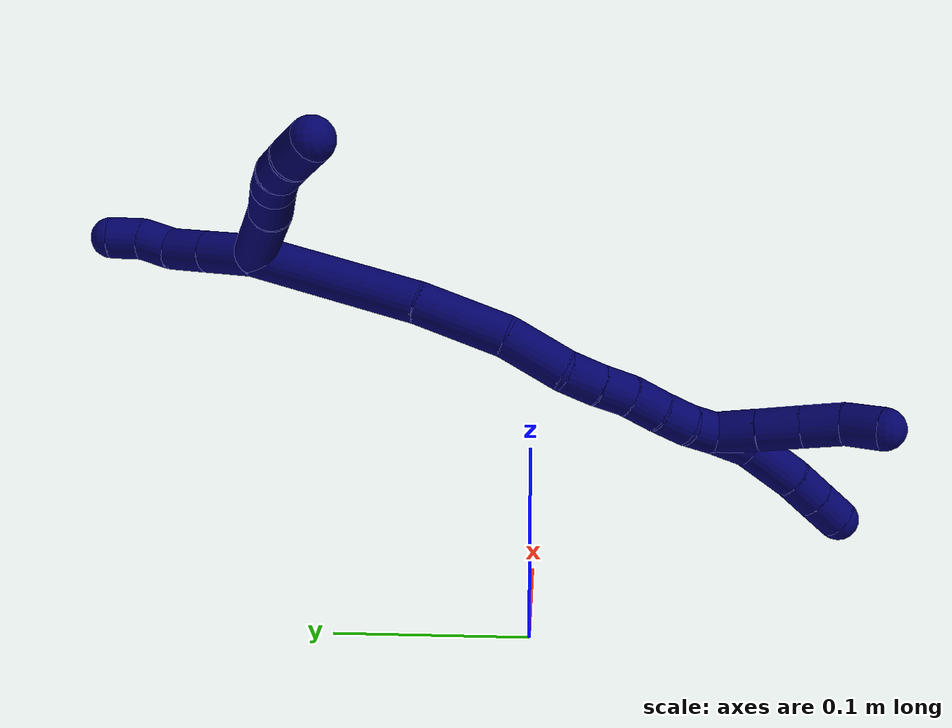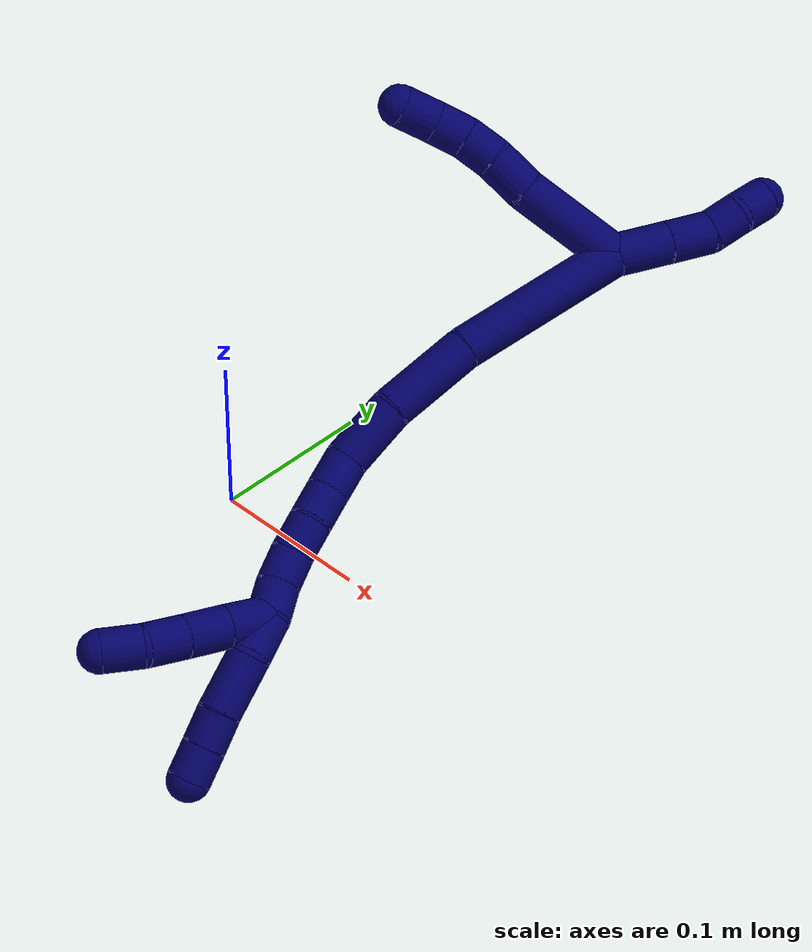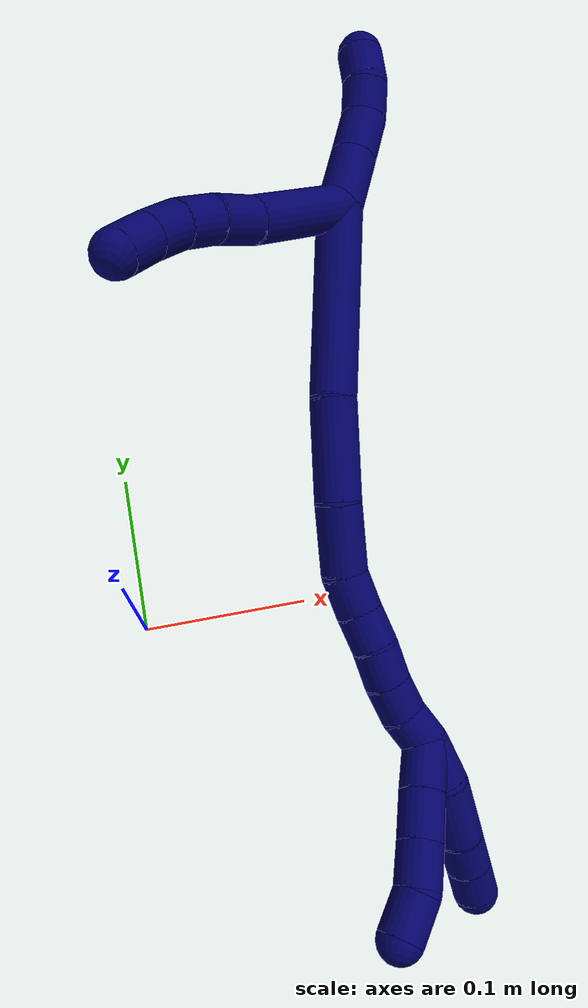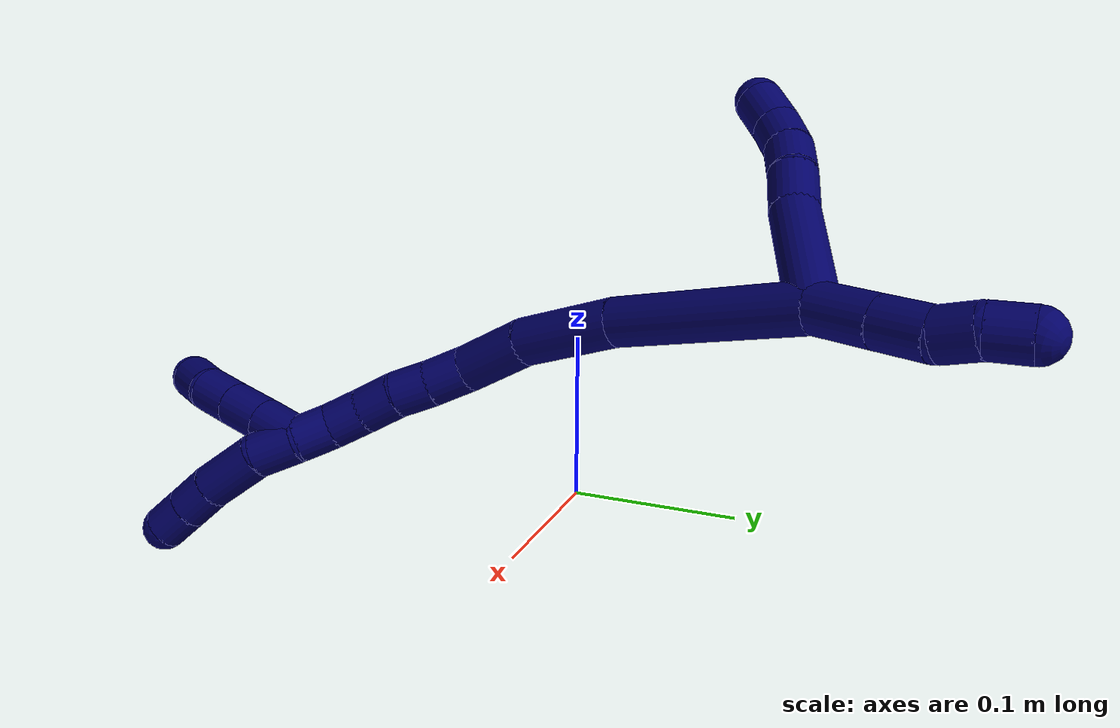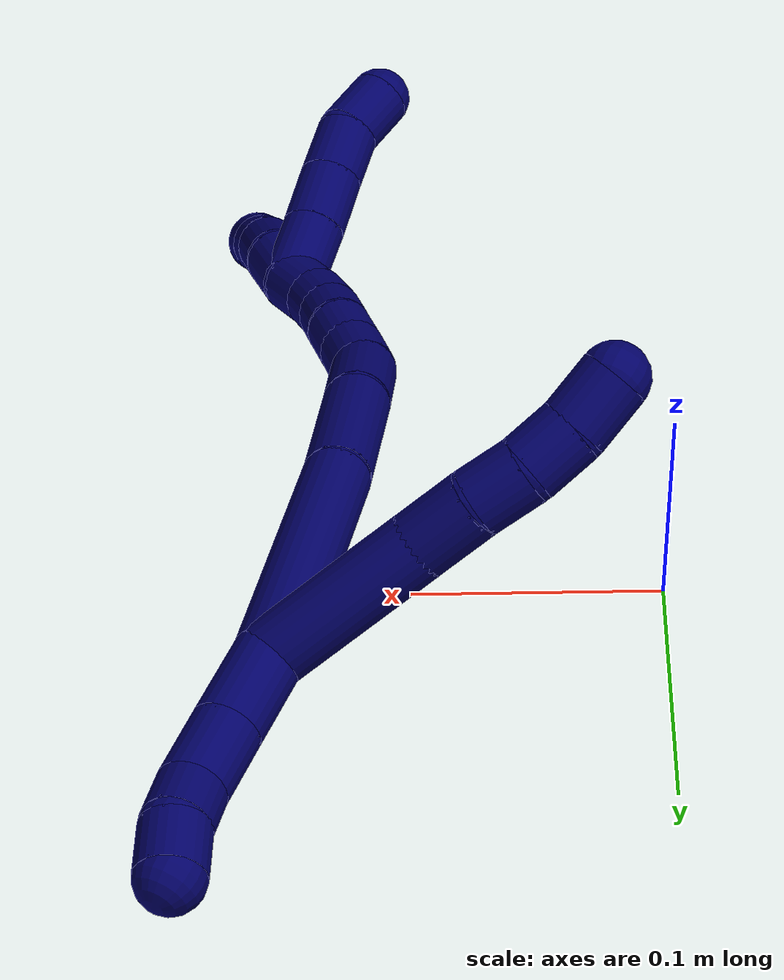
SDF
<sdf version="1.7">
 <world name="default">
  <model name="7">
   <static>0</static>
   <link name="7">
    <collision name="collision-cylinder-e_1_2_8">
     <pose>0.004917 0.021521 -0.022277 -2.37347 0.157436 -0.385526</pose>
     <geometry><cylinder><radius>0.0125</radius><length>0.062724</length></cylinder></geometry>
     <surface>
      <friction><ode><mu>1.16</mu><mu2>1.16</mu2><slip1>0</slip1><slip2>0</slip2></ode></friction>
      <contact><ode><kp>1e+06</kp><kd>1</kd><max_vel>0</max_vel><min_depth>0.001</min_depth></ode></contact>
     </surface>
    </collision>
    <visual name="visual-cylinder-e_1_2_8">
     <pose>0.004917 0.021521 -0.022277 -2.37347 0.157436 -0.385526</pose>
     <geometry><cylinder><radius>0.0125</radius><length>0.062724</length></cylinder></geometry>
     <material><ambient>0.003922 0 0.403922 1</ambient></material>
    </visual>
    <collision name="collision-cylinder-e_2_8_9">
     <pose>0.011189 0.052602 -0.052252 -2.24865 0.109913 -0.228829</pose>
     <geometry><cylinder><radius>0.0125</radius><length>0.024698</length></cylinder></geometry>
     <surface>
      <friction><ode><mu>1.16</mu><mu2>1.16</mu2><slip1>0</slip1><slip2>0</slip2></ode></friction>
      <contact><ode><kp>1e+06</kp><kd>1</kd><max_vel>0</max_vel><min_depth>0.001</min_depth></ode></contact>
     </surface>
    </collision>
    <visual name="visual-cylinder-e_2_8_9">
     <pose>0.011189 0.052602 -0.052252 -2.24865 0.109913 -0.228829</pose>
     <geometry><cylinder><radius>0.0125</radius><length>0.024698</length></cylinder></geometry>
     <material><ambient>0.003922 0 0.403922 1</ambient></material>
    </visual>
    <collision name="collision-cylinder-e_3_9_10">
     <pose>0.014732 0.069151 -0.066998 -2.36049 0.217003 -0.517316</pose>
     <geometry><cylinder><radius>0.0125</radius><length>0.020327</length></cylinder></geometry>
     <surface>
      <friction><ode><mu>1.16</mu><mu2>1.16</mu2><slip1>0</slip1><slip2>0</slip2></ode></friction>
      <contact><ode><kp>1e+06</kp><kd>1</kd><max_vel>0</max_vel><min_depth>0.001</min_depth></ode></contact>
     </surface>
    </collision>
    <visual name="visual-cylinder-e_3_9_10">
     <pose>0.014732 0.069151 -0.066998 -2.36049 0.217003 -0.517316</pose>
     <geometry><cylinder><radius>0.0125</radius><length>0.020327</length></cylinder></geometry>
     <material><ambient>0.003922 0 0.403922 1</ambient></material>
    </visual>
    <collision name="collision-cylinder-e_4_10_11">
     <pose>0.018382 0.081603 -0.082356 -2.55994 0.145909 -0.478977</pose>
     <geometry><cylinder><radius>0.0125</radius><length>0.020104</length></cylinder></geometry>
     <surface>
      <friction><ode><mu>1.16</mu><mu2>1.16</mu2><slip1>0</slip1><slip2>0</slip2></ode></friction>
      <contact><ode><kp>1e+06</kp><kd>1</kd><max_vel>0</max_vel><min_depth>0.001</min_depth></ode></contact>
     </surface>
    </collision>
    <visual name="visual-cylinder-e_4_10_11">
     <pose>0.018382 0.081603 -0.082356 -2.55994 0.145909 -0.478977</pose>
     <geometry><cylinder><radius>0.0125</radius><length>0.020104</length></cylinder></geometry>
     <material><ambient>0.003922 0 0.403922 1</ambient></material>
    </visual>
    <collision name="collision-cylinder-e_5_11_6">
     <pose>0.019679 0.092514 -0.100305 -2.62724 -0.014851 0.056454</pose>
     <geometry><cylinder><radius>0.0125</radius><length>0.022146</length></cylinder></geometry>
     <surface>
      <friction><ode><mu>1.16</mu><mu2>1.16</mu2><slip1>0</slip1><slip2>0</slip2></ode></friction>
      <contact><ode><kp>1e+06</kp><kd>1</kd><max_vel>0</max_vel><min_depth>0.001</min_depth></ode></contact>
     </surface>
    </collision>
    <visual name="visual-cylinder-e_5_11_6">
     <pose>0.019679 0.092514 -0.100305 -2.62724 -0.014851 0.056454</pose>
     <geometry><cylinder><radius>0.0125</radius><length>0.022146</length></cylinder></geometry>
     <material><ambient>0.003922 0 0.403922 1</ambient></material>
    </visual>
    <collision name="collision-cylinder-e_1_2_12">
     <pose>-0.000795 0.002002 0.016446 -0.121127 -0.047978 0.00291</pose>
     <geometry><cylinder><radius>0.0125</radius><length>0.033172</length></cylinder></geometry>
     <surface>
      <friction><ode><mu>1.16</mu><mu2>1.16</mu2><slip1>0</slip1><slip2>0</slip2></ode></friction>
      <contact><ode><kp>1e+06</kp><kd>1</kd><max_vel>0</max_vel><min_depth>0.001</min_depth></ode></contact>
     </surface>
    </collision>
    <visual name="visual-cylinder-e_1_2_12">
     <pose>-0.000795 0.002002 0.016446 -0.121127 -0.047978 0.00291</pose>
     <geometry><cylinder><radius>0.0125</radius><length>0.033172</length></cylinder></geometry>
     <material><ambient>0.003922 0 0.403922 1</ambient></material>
    </visual>
    <collision name="collision-cylinder-e_2_12_13">
     <pose>-0.00218 0.005683 0.046161 -0.125855 -0.044027 0.002775</pose>
     <geometry><cylinder><radius>0.0125</radius><length>0.026777</length></cylinder></geometry>
     <surface>
      <friction><ode><mu>1.16</mu><mu2>1.16</mu2><slip1>0</slip1><slip2>0</slip2></ode></friction>
      <contact><ode><kp>1e+06</kp><kd>1</kd><max_vel>0</max_vel><min_depth>0.001</min_depth></ode></contact>
     </surface>
    </collision>
    <visual name="visual-cylinder-e_2_12_13">
     <pose>-0.00218 0.005683 0.046161 -0.125855 -0.044027 0.002775</pose>
     <geometry><cylinder><radius>0.0125</radius><length>0.026777</length></cylinder></geometry>
     <material><ambient>0.003922 0 0.403922 1</ambient></material>
    </visual>
    <collision name="collision-cylinder-e_3_13_14">
     <pose>-0.003515 0.011658 0.068432 -0.445359 -0.074574 0.016894</pose>
     <geometry><cylinder><radius>0.0125</radius><length>0.020004</length></cylinder></geometry>
     <surface>
      <friction><ode><mu>1.16</mu><mu2>1.16</mu2><slip1>0</slip1><slip2>0</slip2></ode></friction>
      <contact><ode><kp>1e+06</kp><kd>1</kd><max_vel>0</max_vel><min_depth>0.001</min_depth></ode></contact>
     </surface>
    </collision>
    <visual name="visual-cylinder-e_3_13_14">
     <pose>-0.003515 0.011658 0.068432 -0.445359 -0.074574 0.016894</pose>
     <geometry><cylinder><radius>0.0125</radius><length>0.020004</length></cylinder></geometry>
     <material><ambient>0.003922 0 0.403922 1</ambient></material>
    </visual>
    <collision name="collision-cylinder-e_4_14_5">
     <pose>-0.002107 0.019566 0.086533 -0.377769 0.216489 -0.041541</pose>
     <geometry><cylinder><radius>0.0125</radius><length>0.020046</length></cylinder></geometry>
     <surface>
      <friction><ode><mu>1.16</mu><mu2>1.16</mu2><slip1>0</slip1><slip2>0</slip2></ode></friction>
      <contact><ode><kp>1e+06</kp><kd>1</kd><max_vel>0</max_vel><min_depth>0.001</min_depth></ode></contact>
     </surface>
    </collision>
    <visual name="visual-cylinder-e_4_14_5">
     <pose>-0.002107 0.019566 0.086533 -0.377769 0.216489 -0.041541</pose>
     <geometry><cylinder><radius>0.0125</radius><length>0.020046</length></cylinder></geometry>
     <material><ambient>0.003922 0 0.403922 1</ambient></material>
    </visual>
    <collision name="collision-cylinder-e_1_2_15">
     <pose>0.002004 -0.021324 -0.047492 2.71956 0.038481 0.179185</pose>
     <geometry><cylinder><radius>0.0125</radius><length>0.104197</length></cylinder></geometry>
     <surface>
      <friction><ode><mu>1.16</mu><mu2>1.16</mu2><slip1>0</slip1><slip2>0</slip2></ode></friction>
      <contact><ode><kp>1e+06</kp><kd>1</kd><max_vel>0</max_vel><min_depth>0.001</min_depth></ode></contact>
     </surface>
    </collision>
    <visual name="visual-cylinder-e_1_2_15">
     <pose>0.002004 -0.021324 -0.047492 2.71956 0.038481 0.179185</pose>
     <geometry><cylinder><radius>0.0125</radius><length>0.104197</length></cylinder></geometry>
     <material><ambient>0.003922 0 0.403922 1</ambient></material>
    </visual>
    <collision name="collision-cylinder-e_2_15_16">
     <pose>0.005271 -0.057004 -0.118011 2.58414 0.046508 0.16219</pose>
     <geometry><cylinder><radius>0.0125</radius><length>0.05433</length></cylinder></geometry>
     <surface>
      <friction><ode><mu>1.16</mu><mu2>1.16</mu2><slip1>0</slip1><slip2>0</slip2></ode></friction>
      <contact><ode><kp>1e+06</kp><kd>1</kd><max_vel>0</max_vel><min_depth>0.001</min_depth></ode></contact>
     </surface>
    </collision>
    <visual name="visual-cylinder-e_2_15_16">
     <pose>0.005271 -0.057004 -0.118011 2.58414 0.046508 0.16219</pose>
     <geometry><cylinder><radius>0.0125</radius><length>0.05433</length></cylinder></geometry>
     <material><ambient>0.003922 0 0.403922 1</ambient></material>
    </visual>
    <collision name="collision-cylinder-e_3_16_17">
     <pose>0.009019 -0.084043 -0.155155 2.40964 0.130171 0.336916</pose>
     <geometry><cylinder><radius>0.0125</radius><length>0.038279</length></cylinder></geometry>
     <surface>
      <friction><ode><mu>1.16</mu><mu2>1.16</mu2><slip1>0</slip1><slip2>0</slip2></ode></friction>
      <contact><ode><kp>1e+06</kp><kd>1</kd><max_vel>0</max_vel><min_depth>0.001</min_depth></ode></contact>
     </surface>
    </collision>
    <visual name="visual-cylinder-e_3_16_17">
     <pose>0.009019 -0.084043 -0.155155 2.40964 0.130171 0.336916</pose>
     <geometry><cylinder><radius>0.0125</radius><length>0.038279</length></cylinder></geometry>
     <material><ambient>0.003922 0 0.403922 1</ambient></material>
    </visual>
    <collision name="collision-cylinder-e_4_17_18">
     <pose>0.010242 -0.10499 -0.176301 2.27556 -0.115731 -0.249328</pose>
     <geometry><cylinder><radius>0.0125</radius><length>0.021845</length></cylinder></geometry>
     <surface>
      <friction><ode><mu>1.16</mu><mu2>1.16</mu2><slip1>0</slip1><slip2>0</slip2></ode></friction>
      <contact><ode><kp>1e+06</kp><kd>1</kd><max_vel>0</max_vel><min_depth>0.001</min_depth></ode></contact>
     </surface>
    </collision>
    <visual name="visual-cylinder-e_4_17_18">
     <pose>0.010242 -0.10499 -0.176301 2.27556 -0.115731 -0.249328</pose>
     <geometry><cylinder><radius>0.0125</radius><length>0.021845</length></cylinder></geometry>
     <material><ambient>0.003922 0 0.403922 1</ambient></material>
    </visual>
    <collision name="collision-cylinder-e_5_18_19">
     <pose>0.007031 -0.120787 -0.189853 2.28461 -0.193244 -0.41816</pose>
     <geometry><cylinder><radius>0.0125</radius><length>0.020306</length></cylinder></geometry>
     <surface>
      <friction><ode><mu>1.16</mu><mu2>1.16</mu2><slip1>0</slip1><slip2>0</slip2></ode></friction>
      <contact><ode><kp>1e+06</kp><kd>1</kd><max_vel>0</max_vel><min_depth>0.001</min_depth></ode></contact>
     </surface>
    </collision>
    <visual name="visual-cylinder-e_5_18_19">
     <pose>0.007031 -0.120787 -0.189853 2.28461 -0.193244 -0.41816</pose>
     <geometry><cylinder><radius>0.0125</radius><length>0.020306</length></cylinder></geometry>
     <material><ambient>0.003922 0 0.403922 1</ambient></material>
    </visual>
    <collision name="collision-cylinder-e_6_19_20">
     <pose>0.004594 -0.13645 -0.202826 2.24127 -0.046932 -0.097057</pose>
     <geometry><cylinder><radius>0.0125</radius><length>0.020779</length></cylinder></geometry>
     <surface>
      <friction><ode><mu>1.16</mu><mu2>1.16</mu2><slip1>0</slip1><slip2>0</slip2></ode></friction>
      <contact><ode><kp>1e+06</kp><kd>1</kd><max_vel>0</max_vel><min_depth>0.001</min_depth></ode></contact>
     </surface>
    </collision>
    <visual name="visual-cylinder-e_6_19_20">
     <pose>0.004594 -0.13645 -0.202826 2.24127 -0.046932 -0.097057</pose>
     <geometry><cylinder><radius>0.0125</radius><length>0.020779</length></cylinder></geometry>
     <material><ambient>0.003922 0 0.403922 1</ambient></material>
    </visual>
    <collision name="collision-cylinder-e_7_20_21">
     <pose>0.002691 -0.152743 -0.214943 2.17789 -0.141468 -0.269321</pose>
     <geometry><cylinder><radius>0.0125</radius><length>0.020076</length></cylinder></geometry>
     <surface>
      <friction><ode><mu>1.16</mu><mu2>1.16</mu2><slip1>0</slip1><slip2>0</slip2></ode></friction>
      <contact><ode><kp>1e+06</kp><kd>1</kd><max_vel>0</max_vel><min_depth>0.001</min_depth></ode></contact>
     </surface>
    </collision>
    <visual name="visual-cylinder-e_7_20_21">
     <pose>0.002691 -0.152743 -0.214943 2.17789 -0.141468 -0.269321</pose>
     <geometry><cylinder><radius>0.0125</radius><length>0.020076</length></cylinder></geometry>
     <material><ambient>0.003922 0 0.403922 1</ambient></material>
    </visual>
    <collision name="collision-cylinder-e_8_21_1">
     <pose>-0.002039 -0.169206 -0.225303 2.0851 -0.334575 -0.563354</pose>
     <geometry><cylinder><radius>0.0125</radius><length>0.020189</length></cylinder></geometry>
     <surface>
      <friction><ode><mu>1.16</mu><mu2>1.16</mu2><slip1>0</slip1><slip2>0</slip2></ode></friction>
      <contact><ode><kp>1e+06</kp><kd>1</kd><max_vel>0</max_vel><min_depth>0.001</min_depth></ode></contact>
     </surface>
    </collision>
    <visual name="visual-cylinder-e_8_21_1">
     <pose>-0.002039 -0.169206 -0.225303 2.0851 -0.334575 -0.563354</pose>
     <geometry><cylinder><radius>0.0125</radius><length>0.020189</length></cylinder></geometry>
     <material><ambient>0.003922 0 0.403922 1</ambient></material>
    </visual>
    <collision name="collision-cylinder-e_1_1_22">
     <pose>-0.007683 -0.187039 -0.237477 2.2364 -0.18992 -0.386851</pose>
     <geometry><cylinder><radius>0.0125</radius><length>0.02468</length></cylinder></geometry>
     <surface>
      <friction><ode><mu>1.16</mu><mu2>1.16</mu2><slip1>0</slip1><slip2>0</slip2></ode></friction>
      <contact><ode><kp>1e+06</kp><kd>1</kd><max_vel>0</max_vel><min_depth>0.001</min_depth></ode></contact>
     </surface>
    </collision>
    <visual name="visual-cylinder-e_1_1_22">
     <pose>-0.007683 -0.187039 -0.237477 2.2364 -0.18992 -0.386851</pose>
     <geometry><cylinder><radius>0.0125</radius><length>0.02468</length></cylinder></geometry>
     <material><ambient>0.003922 0 0.403922 1</ambient></material>
    </visual>
    <collision name="collision-cylinder-e_2_22_23">
     <pose>-0.008696 -0.210835 -0.254927 2.18064 0.075541 0.144749</pose>
     <geometry><cylinder><radius>0.0125</radius><length>0.034902</length></cylinder></geometry>
     <surface>
      <friction><ode><mu>1.16</mu><mu2>1.16</mu2><slip1>0</slip1><slip2>0</slip2></ode></friction>
      <contact><ode><kp>1e+06</kp><kd>1</kd><max_vel>0</max_vel><min_depth>0.001</min_depth></ode></contact>
     </surface>
    </collision>
    <visual name="visual-cylinder-e_2_22_23">
     <pose>-0.008696 -0.210835 -0.254927 2.18064 0.075541 0.144749</pose>
     <geometry><cylinder><radius>0.0125</radius><length>0.034902</length></cylinder></geometry>
     <material><ambient>0.003922 0 0.403922 1</ambient></material>
    </visual>
    <collision name="collision-cylinder-e_3_23_24">
     <pose>-0.006036 -0.233762 -0.269906 2.0954 0.133372 0.230593</pose>
     <geometry><cylinder><radius>0.0125</radius><length>0.020196</length></cylinder></geometry>
     <surface>
      <friction><ode><mu>1.16</mu><mu2>1.16</mu2><slip1>0</slip1><slip2>0</slip2></ode></friction>
      <contact><ode><kp>1e+06</kp><kd>1</kd><max_vel>0</max_vel><min_depth>0.001</min_depth></ode></contact>
     </surface>
    </collision>
    <visual name="visual-cylinder-e_3_23_24">
     <pose>-0.006036 -0.233762 -0.269906 2.0954 0.133372 0.230593</pose>
     <geometry><cylinder><radius>0.0125</radius><length>0.020196</length></cylinder></geometry>
     <material><ambient>0.003922 0 0.403922 1</ambient></material>
    </visual>
    <collision name="collision-cylinder-e_4_24_4">
     <pose>-0.003318 -0.25104 -0.280028 2.10602 0.136436 0.238751</pose>
     <geometry><cylinder><radius>0.0125</radius><length>0.020222</length></cylinder></geometry>
     <surface>
      <friction><ode><mu>1.16</mu><mu2>1.16</mu2><slip1>0</slip1><slip2>0</slip2></ode></friction>
      <contact><ode><kp>1e+06</kp><kd>1</kd><max_vel>0</max_vel><min_depth>0.001</min_depth></ode></contact>
     </surface>
    </collision>
    <visual name="visual-cylinder-e_4_24_4">
     <pose>-0.003318 -0.25104 -0.280028 2.10602 0.136436 0.238751</pose>
     <geometry><cylinder><radius>0.0125</radius><length>0.020222</length></cylinder></geometry>
     <material><ambient>0.003922 0 0.403922 1</ambient></material>
    </visual>
    <collision name="collision-cylinder-e_1_1_25">
     <pose>-0.007242 -0.178337 -0.24312 3.0785 -0.142548 -2.3092</pose>
     <geometry><cylinder><radius>0.0125</radius><length>0.026576</length></cylinder></geometry>
     <surface>
      <friction><ode><mu>1.16</mu><mu2>1.16</mu2><slip1>0</slip1><slip2>0</slip2></ode></friction>
      <contact><ode><kp>1e+06</kp><kd>1</kd><max_vel>0</max_vel><min_depth>0.001</min_depth></ode></contact>
     </surface>
    </collision>
    <visual name="visual-cylinder-e_1_1_25">
     <pose>-0.007242 -0.178337 -0.24312 3.0785 -0.142548 -2.3092</pose>
     <geometry><cylinder><radius>0.0125</radius><length>0.026576</length></cylinder></geometry>
     <material><ambient>0.003922 0 0.403922 1</ambient></material>
    </visual>
    <collision name="collision-cylinder-e_2_25_26">
     <pose>-0.01126 -0.180245 -0.26888 3.05644 -0.166481 -2.19734</pose>
     <geometry><cylinder><radius>0.0125</radius><length>0.025712</length></cylinder></geometry>
     <surface>
      <friction><ode><mu>1.16</mu><mu2>1.16</mu2><slip1>0</slip1><slip2>0</slip2></ode></friction>
      <contact><ode><kp>1e+06</kp><kd>1</kd><max_vel>0</max_vel><min_depth>0.001</min_depth></ode></contact>
     </surface>
    </collision>
    <visual name="visual-cylinder-e_2_25_26">
     <pose>-0.01126 -0.180245 -0.26888 3.05644 -0.166481 -2.19734</pose>
     <geometry><cylinder><radius>0.0125</radius><length>0.025712</length></cylinder></geometry>
     <material><ambient>0.003922 0 0.403922 1</ambient></material>
    </visual>
    <collision name="collision-cylinder-e_3_26_27">
     <pose>-0.015172 -0.182174 -0.293273 3.06934 -0.149944 -2.24462</pose>
     <geometry><cylinder><radius>0.0125</radius><length>0.023852</length></cylinder></geometry>
     <surface>
      <friction><ode><mu>1.16</mu><mu2>1.16</mu2><slip1>0</slip1><slip2>0</slip2></ode></friction>
      <contact><ode><kp>1e+06</kp><kd>1</kd><max_vel>0</max_vel><min_depth>0.001</min_depth></ode></contact>
     </surface>
    </collision>
    <visual name="visual-cylinder-e_3_26_27">
     <pose>-0.015172 -0.182174 -0.293273 3.06934 -0.149944 -2.24462</pose>
     <geometry><cylinder><radius>0.0125</radius><length>0.023852</length></cylinder></geometry>
     <material><ambient>0.003922 0 0.403922 1</ambient></material>
    </visual>
    <collision name="collision-cylinder-e_4_27_3">
     <pose>-0.015129 -0.182929 -0.316824 -3.13339 0.153501 -3.035</pose>
     <geometry><cylinder><radius>0.0125</radius><length>0.02386</length></cylinder></geometry>
     <surface>
      <friction><ode><mu>1.16</mu><mu2>1.16</mu2><slip1>0</slip1><slip2>0</slip2></ode></friction>
      <contact><ode><kp>1e+06</kp><kd>1</kd><max_vel>0</max_vel><min_depth>0.001</min_depth></ode></contact>
     </surface>
    </collision>
    <visual name="visual-cylinder-e_4_27_3">
     <pose>-0.015129 -0.182929 -0.316824 -3.13339 0.153501 -3.035</pose>
     <geometry><cylinder><radius>0.0125</radius><length>0.02386</length></cylinder></geometry>
     <material><ambient>0.003922 0 0.403922 1</ambient></material>
    </visual>
    <collision name="collision-sphere-3">
     <pose>-0.013305 -0.182832 -0.328614 0 -0 0</pose>
     <geometry><sphere><radius>0.0125</radius></sphere></geometry>
     <surface>
      <friction><ode><mu>1.16</mu><mu2>1.16</mu2><slip1>0</slip1><slip2>0</slip2></ode></friction>
      <contact><ode><kp>1e+06</kp><kd>1</kd><max_vel>0</max_vel><min_depth>0.001</min_depth></ode></contact>
     </surface>
    </collision>
    <visual name="visual-sphere-3">
     <pose>-0.013305 -0.182832 -0.328614 0 -0 0</pose>
     <geometry><sphere><radius>0.0125</radius></sphere></geometry>
     <material><ambient>0.003922 0 0.403922 1</ambient></material>
    </visual>
    <collision name="collision-sphere-27">
     <pose>-0.016953 -0.183026 -0.305035 0 -0 0</pose>
     <geometry><sphere><radius>0.0125</radius></sphere></geometry>
     <surface>
      <friction><ode><mu>1.16</mu><mu2>1.16</mu2><slip1>0</slip1><slip2>0</slip2></ode></friction>
      <contact><ode><kp>1e+06</kp><kd>1</kd><max_vel>0</max_vel><min_depth>0.001</min_depth></ode></contact>
     </surface>
    </collision>
    <visual name="visual-sphere-27">
     <pose>-0.016953 -0.183026 -0.305035 0 -0 0</pose>
     <geometry><sphere><radius>0.0125</radius></sphere></geometry>
     <material><ambient>0.003922 0 0.403922 1</ambient></material>
    </visual>
    <collision name="collision-sphere-26">
     <pose>-0.01339 -0.181323 -0.281512 0 -0 0</pose>
     <geometry><sphere><radius>0.0125</radius></sphere></geometry>
     <surface>
      <friction><ode><mu>1.16</mu><mu2>1.16</mu2><slip1>0</slip1><slip2>0</slip2></ode></friction>
      <contact><ode><kp>1e+06</kp><kd>1</kd><max_vel>0</max_vel><min_depth>0.001</min_depth></ode></contact>
     </surface>
    </collision>
    <visual name="visual-sphere-26">
     <pose>-0.01339 -0.181323 -0.281512 0 -0 0</pose>
     <geometry><sphere><radius>0.0125</radius></sphere></geometry>
     <material><ambient>0.003922 0 0.403922 1</ambient></material>
    </visual>
    <collision name="collision-sphere-25">
     <pose>-0.009129 -0.179166 -0.256248 0 -0 0</pose>
     <geometry><sphere><radius>0.0125</radius></sphere></geometry>
     <surface>
      <friction><ode><mu>1.16</mu><mu2>1.16</mu2><slip1>0</slip1><slip2>0</slip2></ode></friction>
      <contact><ode><kp>1e+06</kp><kd>1</kd><max_vel>0</max_vel><min_depth>0.001</min_depth></ode></contact>
     </surface>
    </collision>
    <visual name="visual-sphere-25">
     <pose>-0.009129 -0.179166 -0.256248 0 -0 0</pose>
     <geometry><sphere><radius>0.0125</radius></sphere></geometry>
     <material><ambient>0.003922 0 0.403922 1</ambient></material>
    </visual>
    <collision name="collision-sphere-4">
     <pose>-0.001943 -0.259656 -0.285137 0 -0 0</pose>
     <geometry><sphere><radius>0.0125</radius></sphere></geometry>
     <surface>
      <friction><ode><mu>1.16</mu><mu2>1.16</mu2><slip1>0</slip1><slip2>0</slip2></ode></friction>
      <contact><ode><kp>1e+06</kp><kd>1</kd><max_vel>0</max_vel><min_depth>0.001</min_depth></ode></contact>
     </surface>
    </collision>
    <visual name="visual-sphere-4">
     <pose>-0.001943 -0.259656 -0.285137 0 -0 0</pose>
     <geometry><sphere><radius>0.0125</radius></sphere></geometry>
     <material><ambient>0.003922 0 0.403922 1</ambient></material>
    </visual>
    <collision name="collision-sphere-24">
     <pose>-0.004693 -0.242424 -0.274919 0 -0 0</pose>
     <geometry><sphere><radius>0.0125</radius></sphere></geometry>
     <surface>
      <friction><ode><mu>1.16</mu><mu2>1.16</mu2><slip1>0</slip1><slip2>0</slip2></ode></friction>
      <contact><ode><kp>1e+06</kp><kd>1</kd><max_vel>0</max_vel><min_depth>0.001</min_depth></ode></contact>
     </surface>
    </collision>
    <visual name="visual-sphere-24">
     <pose>-0.004693 -0.242424 -0.274919 0 -0 0</pose>
     <geometry><sphere><radius>0.0125</radius></sphere></geometry>
     <material><ambient>0.003922 0 0.403922 1</ambient></material>
    </visual>
    <collision name="collision-sphere-23">
     <pose>-0.007379 -0.2251 -0.264893 0 -0 0</pose>
     <geometry><sphere><radius>0.0125</radius></sphere></geometry>
     <surface>
      <friction><ode><mu>1.16</mu><mu2>1.16</mu2><slip1>0</slip1><slip2>0</slip2></ode></friction>
      <contact><ode><kp>1e+06</kp><kd>1</kd><max_vel>0</max_vel><min_depth>0.001</min_depth></ode></contact>
     </surface>
    </collision>
    <visual name="visual-sphere-23">
     <pose>-0.007379 -0.2251 -0.264893 0 -0 0</pose>
     <geometry><sphere><radius>0.0125</radius></sphere></geometry>
     <material><ambient>0.003922 0 0.403922 1</ambient></material>
    </visual>
    <collision name="collision-sphere-22">
     <pose>-0.010013 -0.196571 -0.24496 0 -0 0</pose>
     <geometry><sphere><radius>0.0125</radius></sphere></geometry>
     <surface>
      <friction><ode><mu>1.16</mu><mu2>1.16</mu2><slip1>0</slip1><slip2>0</slip2></ode></friction>
      <contact><ode><kp>1e+06</kp><kd>1</kd><max_vel>0</max_vel><min_depth>0.001</min_depth></ode></contact>
     </surface>
    </collision>
    <visual name="visual-sphere-22">
     <pose>-0.010013 -0.196571 -0.24496 0 -0 0</pose>
     <geometry><sphere><radius>0.0125</radius></sphere></geometry>
     <material><ambient>0.003922 0 0.403922 1</ambient></material>
    </visual>
    <collision name="collision-sphere-1">
     <pose>-0.005354 -0.177508 -0.229993 0 -0 0</pose>
     <geometry><sphere><radius>0.0125</radius></sphere></geometry>
     <surface>
      <friction><ode><mu>1.16</mu><mu2>1.16</mu2><slip1>0</slip1><slip2>0</slip2></ode></friction>
      <contact><ode><kp>1e+06</kp><kd>1</kd><max_vel>0</max_vel><min_depth>0.001</min_depth></ode></contact>
     </surface>
    </collision>
    <visual name="visual-sphere-1">
     <pose>-0.005354 -0.177508 -0.229993 0 -0 0</pose>
     <geometry><sphere><radius>0.0125</radius></sphere></geometry>
     <material><ambient>0.003922 0 0.403922 1</ambient></material>
    </visual>
    <collision name="collision-sphere-21">
     <pose>0.001276 -0.160905 -0.220613 0 -0 0</pose>
     <geometry><sphere><radius>0.0125</radius></sphere></geometry>
     <surface>
      <friction><ode><mu>1.16</mu><mu2>1.16</mu2><slip1>0</slip1><slip2>0</slip2></ode></friction>
      <contact><ode><kp>1e+06</kp><kd>1</kd><max_vel>0</max_vel><min_depth>0.001</min_depth></ode></contact>
     </surface>
    </collision>
    <visual name="visual-sphere-21">
     <pose>0.001276 -0.160905 -0.220613 0 -0 0</pose>
     <geometry><sphere><radius>0.0125</radius></sphere></geometry>
     <material><ambient>0.003922 0 0.403922 1</ambient></material>
    </visual>
    <collision name="collision-sphere-6">
     <pose>0.019514 0.097961 -0.109944 0 -0 0</pose>
     <geometry><sphere><radius>0.0125</radius></sphere></geometry>
     <surface>
      <friction><ode><mu>1.16</mu><mu2>1.16</mu2><slip1>0</slip1><slip2>0</slip2></ode></friction>
      <contact><ode><kp>1e+06</kp><kd>1</kd><max_vel>0</max_vel><min_depth>0.001</min_depth></ode></contact>
     </surface>
    </collision>
    <visual name="visual-sphere-6">
     <pose>0.019514 0.097961 -0.109944 0 -0 0</pose>
     <geometry><sphere><radius>0.0125</radius></sphere></geometry>
     <material><ambient>0.003922 0 0.403922 1</ambient></material>
    </visual>
    <collision name="collision-sphere-11">
     <pose>0.019843 0.087067 -0.090666 0 -0 0</pose>
     <geometry><sphere><radius>0.0125</radius></sphere></geometry>
     <surface>
      <friction><ode><mu>1.16</mu><mu2>1.16</mu2><slip1>0</slip1><slip2>0</slip2></ode></friction>
      <contact><ode><kp>1e+06</kp><kd>1</kd><max_vel>0</max_vel><min_depth>0.001</min_depth></ode></contact>
     </surface>
    </collision>
    <visual name="visual-sphere-11">
     <pose>0.019843 0.087067 -0.090666 0 -0 0</pose>
     <geometry><sphere><radius>0.0125</radius></sphere></geometry>
     <material><ambient>0.003922 0 0.403922 1</ambient></material>
    </visual>
    <collision name="collision-sphere-10">
     <pose>0.01692 0.076139 -0.074046 0 -0 0</pose>
     <geometry><sphere><radius>0.0125</radius></sphere></geometry>
     <surface>
      <friction><ode><mu>1.16</mu><mu2>1.16</mu2><slip1>0</slip1><slip2>0</slip2></ode></friction>
      <contact><ode><kp>1e+06</kp><kd>1</kd><max_vel>0</max_vel><min_depth>0.001</min_depth></ode></contact>
     </surface>
    </collision>
    <visual name="visual-sphere-10">
     <pose>0.01692 0.076139 -0.074046 0 -0 0</pose>
     <geometry><sphere><radius>0.0125</radius></sphere></geometry>
     <material><ambient>0.003922 0 0.403922 1</ambient></material>
    </visual>
    <collision name="collision-sphere-9">
     <pose>0.012543 0.062163 -0.059949 0 -0 0</pose>
     <geometry><sphere><radius>0.0125</radius></sphere></geometry>
     <surface>
      <friction><ode><mu>1.16</mu><mu2>1.16</mu2><slip1>0</slip1><slip2>0</slip2></ode></friction>
      <contact><ode><kp>1e+06</kp><kd>1</kd><max_vel>0</max_vel><min_depth>0.001</min_depth></ode></contact>
     </surface>
    </collision>
    <visual name="visual-sphere-9">
     <pose>0.012543 0.062163 -0.059949 0 -0 0</pose>
     <geometry><sphere><radius>0.0125</radius></sphere></geometry>
     <material><ambient>0.003922 0 0.403922 1</ambient></material>
    </visual>
    <collision name="collision-sphere-2">
     <geometry><sphere><radius>0.0125</radius></sphere></geometry>
     <surface>
      <friction><ode><mu>1.16</mu><mu2>1.16</mu2><slip1>0</slip1><slip2>0</slip2></ode></friction>
      <contact><ode><kp>1e+06</kp><kd>1</kd><max_vel>0</max_vel><min_depth>0.001</min_depth></ode></contact>
     </surface>
    </collision>
    <visual name="visual-sphere-2">
     <geometry><sphere><radius>0.0125</radius></sphere></geometry>
     <material><ambient>0.003922 0 0.403922 1</ambient></material>
    </visual>
    <collision name="collision-sphere-19">
     <pose>0.005081 -0.128318 -0.196377 0 -0 0</pose>
     <geometry><sphere><radius>0.0125</radius></sphere></geometry>
     <surface>
      <friction><ode><mu>1.16</mu><mu2>1.16</mu2><slip1>0</slip1><slip2>0</slip2></ode></friction>
      <contact><ode><kp>1e+06</kp><kd>1</kd><max_vel>0</max_vel><min_depth>0.001</min_depth></ode></contact>
     </surface>
    </collision>
    <visual name="visual-sphere-19">
     <pose>0.005081 -0.128318 -0.196377 0 -0 0</pose>
     <geometry><sphere><radius>0.0125</radius></sphere></geometry>
     <material><ambient>0.003922 0 0.403922 1</ambient></material>
    </visual>
    <collision name="collision-sphere-8">
     <pose>0.009834 0.043041 -0.044554 0 -0 0</pose>
     <geometry><sphere><radius>0.0125</radius></sphere></geometry>
     <surface>
      <friction><ode><mu>1.16</mu><mu2>1.16</mu2><slip1>0</slip1><slip2>0</slip2></ode></friction>
      <contact><ode><kp>1e+06</kp><kd>1</kd><max_vel>0</max_vel><min_depth>0.001</min_depth></ode></contact>
     </surface>
    </collision>
    <visual name="visual-sphere-8">
     <pose>0.009834 0.043041 -0.044554 0 -0 0</pose>
     <geometry><sphere><radius>0.0125</radius></sphere></geometry>
     <material><ambient>0.003922 0 0.403922 1</ambient></material>
    </visual>
    <collision name="collision-sphere-12">
     <pose>-0.001591 0.004004 0.032891 0 -0 0</pose>
     <geometry><sphere><radius>0.0125</radius></sphere></geometry>
     <surface>
      <friction><ode><mu>1.16</mu><mu2>1.16</mu2><slip1>0</slip1><slip2>0</slip2></ode></friction>
      <contact><ode><kp>1e+06</kp><kd>1</kd><max_vel>0</max_vel><min_depth>0.001</min_depth></ode></contact>
     </surface>
    </collision>
    <visual name="visual-sphere-12">
     <pose>-0.001591 0.004004 0.032891 0 -0 0</pose>
     <geometry><sphere><radius>0.0125</radius></sphere></geometry>
     <material><ambient>0.003922 0 0.403922 1</ambient></material>
    </visual>
    <collision name="collision-sphere-13">
     <pose>-0.002769 0.007362 0.059431 0 -0 0</pose>
     <geometry><sphere><radius>0.0125</radius></sphere></geometry>
     <surface>
      <friction><ode><mu>1.16</mu><mu2>1.16</mu2><slip1>0</slip1><slip2>0</slip2></ode></friction>
      <contact><ode><kp>1e+06</kp><kd>1</kd><max_vel>0</max_vel><min_depth>0.001</min_depth></ode></contact>
     </surface>
    </collision>
    <visual name="visual-sphere-13">
     <pose>-0.002769 0.007362 0.059431 0 -0 0</pose>
     <geometry><sphere><radius>0.0125</radius></sphere></geometry>
     <material><ambient>0.003922 0 0.403922 1</ambient></material>
    </visual>
    <collision name="collision-sphere-14">
     <pose>-0.00426 0.015955 0.077434 0 -0 0</pose>
     <geometry><sphere><radius>0.0125</radius></sphere></geometry>
     <surface>
      <friction><ode><mu>1.16</mu><mu2>1.16</mu2><slip1>0</slip1><slip2>0</slip2></ode></friction>
      <contact><ode><kp>1e+06</kp><kd>1</kd><max_vel>0</max_vel><min_depth>0.001</min_depth></ode></contact>
     </surface>
    </collision>
    <visual name="visual-sphere-14">
     <pose>-0.00426 0.015955 0.077434 0 -0 0</pose>
     <geometry><sphere><radius>0.0125</radius></sphere></geometry>
     <material><ambient>0.003922 0 0.403922 1</ambient></material>
    </visual>
    <collision name="collision-sphere-5">
     <pose>4.6e-05 0.023176 0.095632 0 -0 0</pose>
     <geometry><sphere><radius>0.0125</radius></sphere></geometry>
     <surface>
      <friction><ode><mu>1.16</mu><mu2>1.16</mu2><slip1>0</slip1><slip2>0</slip2></ode></friction>
      <contact><ode><kp>1e+06</kp><kd>1</kd><max_vel>0</max_vel><min_depth>0.001</min_depth></ode></contact>
     </surface>
    </collision>
    <visual name="visual-sphere-5">
     <pose>4.6e-05 0.023176 0.095632 0 -0 0</pose>
     <geometry><sphere><radius>0.0125</radius></sphere></geometry>
     <material><ambient>0.003922 0 0.403922 1</ambient></material>
    </visual>
    <collision name="collision-sphere-15">
     <pose>0.004009 -0.042649 -0.094984 0 -0 0</pose>
     <geometry><sphere><radius>0.0125</radius></sphere></geometry>
     <surface>
      <friction><ode><mu>1.16</mu><mu2>1.16</mu2><slip1>0</slip1><slip2>0</slip2></ode></friction>
      <contact><ode><kp>1e+06</kp><kd>1</kd><max_vel>0</max_vel><min_depth>0.001</min_depth></ode></contact>
     </surface>
    </collision>
    <visual name="visual-sphere-15">
     <pose>0.004009 -0.042649 -0.094984 0 -0 0</pose>
     <geometry><sphere><radius>0.0125</radius></sphere></geometry>
     <material><ambient>0.003922 0 0.403922 1</ambient></material>
    </visual>
    <collision name="collision-sphere-16">
     <pose>0.006534 -0.07136 -0.141039 0 -0 0</pose>
     <geometry><sphere><radius>0.0125</radius></sphere></geometry>
     <surface>
      <friction><ode><mu>1.16</mu><mu2>1.16</mu2><slip1>0</slip1><slip2>0</slip2></ode></friction>
      <contact><ode><kp>1e+06</kp><kd>1</kd><max_vel>0</max_vel><min_depth>0.001</min_depth></ode></contact>
     </surface>
    </collision>
    <visual name="visual-sphere-16">
     <pose>0.006534 -0.07136 -0.141039 0 -0 0</pose>
     <geometry><sphere><radius>0.0125</radius></sphere></geometry>
     <material><ambient>0.003922 0 0.403922 1</ambient></material>
    </visual>
    <collision name="collision-sphere-17">
     <pose>0.011503 -0.096726 -0.169272 0 -0 0</pose>
     <geometry><sphere><radius>0.0125</radius></sphere></geometry>
     <surface>
      <friction><ode><mu>1.16</mu><mu2>1.16</mu2><slip1>0</slip1><slip2>0</slip2></ode></friction>
      <contact><ode><kp>1e+06</kp><kd>1</kd><max_vel>0</max_vel><min_depth>0.001</min_depth></ode></contact>
     </surface>
    </collision>
    <visual name="visual-sphere-17">
     <pose>0.011503 -0.096726 -0.169272 0 -0 0</pose>
     <geometry><sphere><radius>0.0125</radius></sphere></geometry>
     <material><ambient>0.003922 0 0.403922 1</ambient></material>
    </visual>
    <collision name="collision-sphere-18">
     <pose>0.008981 -0.113255 -0.18333 0 -0 0</pose>
     <geometry><sphere><radius>0.0125</radius></sphere></geometry>
     <surface>
      <friction><ode><mu>1.16</mu><mu2>1.16</mu2><slip1>0</slip1><slip2>0</slip2></ode></friction>
      <contact><ode><kp>1e+06</kp><kd>1</kd><max_vel>0</max_vel><min_depth>0.001</min_depth></ode></contact>
     </surface>
    </collision>
    <visual name="visual-sphere-18">
     <pose>0.008981 -0.113255 -0.18333 0 -0 0</pose>
     <geometry><sphere><radius>0.0125</radius></sphere></geometry>
     <material><ambient>0.003922 0 0.403922 1</ambient></material>
    </visual>
    <collision name="collision-sphere-20">
     <pose>0.004106 -0.144582 -0.209274 0 -0 0</pose>
     <geometry><sphere><radius>0.0125</radius></sphere></geometry>
     <surface>
      <friction><ode><mu>1.16</mu><mu2>1.16</mu2><slip1>0</slip1><slip2>0</slip2></ode></friction>
      <contact><ode><kp>1e+06</kp><kd>1</kd><max_vel>0</max_vel><min_depth>0.001</min_depth></ode></contact>
     </surface>
    </collision>
    <visual name="visual-sphere-20">
     <pose>0.004106 -0.144582 -0.209274 0 -0 0</pose>
     <geometry><sphere><radius>0.0125</radius></sphere></geometry>
     <material><ambient>0.003922 0 0.403922 1</ambient></material>
    </visual>
    <inertial>
     <pose>0.001227 -0.071824 -0.126569 0 -0 0</pose>
     <mass>0.75</mass>
     <inertia><ixx>0.000171</ixx><ixy>0</ixy><ixz>0</ixz><iyy>-0.000124</iyy><iyz>0</iyz><izz>6e-06</izz></inertia>
    </inertial>
   </link>
   <pose>0.149509 0.16603 0.173393 1.72913 0.697399 2.77615</pose>
  </model>
 </world>
</sdf>
